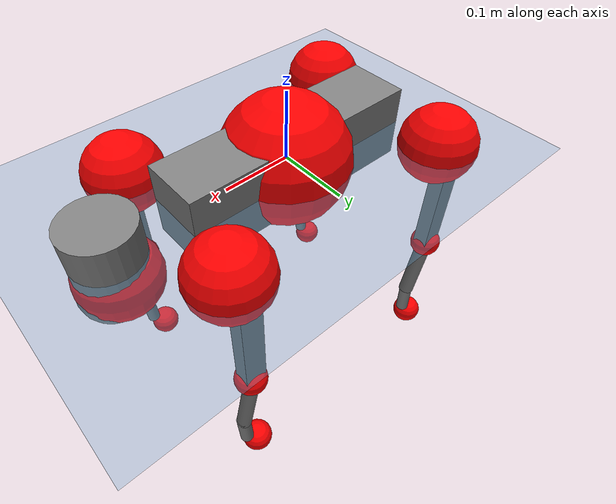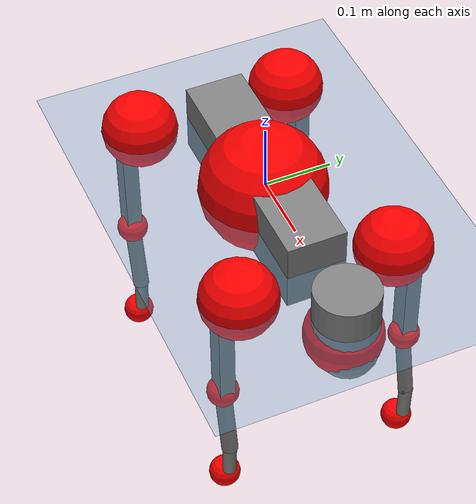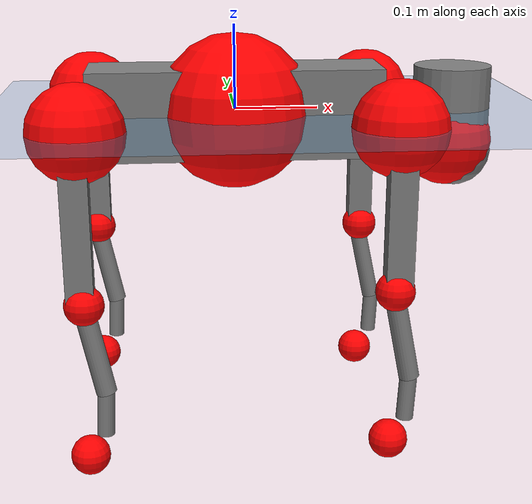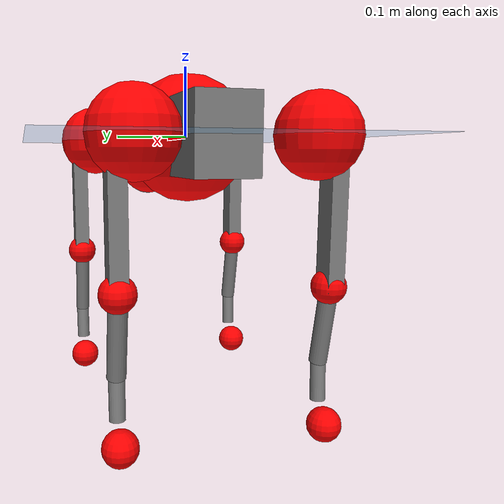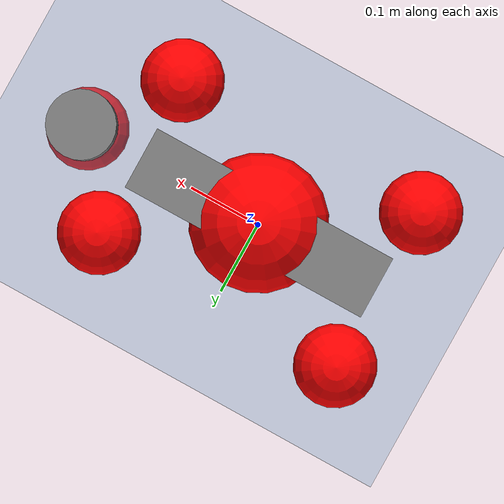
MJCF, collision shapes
<mujoco model="go2">
  <compiler angle="radian" assetdir="assets" balanceinertia="true" inertiafromgeom="false"/>

  <option timestep="0.005" density="1.2" viscosity="2e-05"/>

  <size nkey="1"/>

  <visual>
    <quality shadowsize="8192"/>
    <map shadowclip="0.5"/>
  </visual>

  <default>
    <default class="/">
      <geom contype="0" conaffinity="0" group="1" solref="-1000 -80"/>
      <site size="0.01 0.005 0.005" group="5"/>
      <general forcelimited="true" biastype="affine" gainprm="20" biasprm="0 -20 -0.5"/>
      <default class="go2">
        <joint armature="0.01" damping="0.01" frictionloss="0.2"/>
        <geom condim="1" margin="0.001"/>
        <default class="visual">
          <geom type="mesh" group="2"/>
        </default>
        <default class="collision">
          <geom group="3"/>
          <default class="foot">
            <geom size="0.022 0 0" condim="6" priority="1" friction="0.8 0.02 0.01" solimp="0.015 1 0.022"/>
          </default>
        </default>
        <default class="reward_collision_sphere">
          <geom group="5" rgba="1 0 0 1"/>
        </default>
      </default>
    </default>
  </default>

  <asset>
    <texture type="skybox" colorspace="auto" name="//unnamed_texture_0" builtin="gradient" rgb1="0.95 0.95 0.95" rgb2="0.95 0.95 0.95" width="100" height="600"/>
    <texture type="2d" colorspace="auto" name="texplane" builtin="checker" rgb1="0.345 0.575 0.748" rgb2="0.345 0.575 0.748" markrgb="1 1 1" width="512" height="512"/>
    <material name="MatPlane" class="/" texture="texplane" texuniform="true" texrepeat="2 2" specular="0.9"/>
    <material name="metal" class="/" rgba="0.9 0.95 0.95 1"/>
    <material name="black" class="/" rgba="0 0 0 1"/>
    <material name="white" class="/"/>
    <material name="gray" class="/" rgba="0.671705 0.692426 0.77427 1"/>
    <mesh name="base_0" class="/" file="base_0.obj"/>
    <mesh name="base_1" class="/" file="base_1.obj"/>
    <mesh name="base_2" class="/" file="base_2.obj"/>
    <mesh name="base_3" class="/" file="base_3.obj"/>
    <mesh name="base_4" class="/" file="base_4.obj"/>
    <mesh name="hip_0" class="/" file="hip_0.obj"/>
    <mesh name="hip_1" class="/" file="hip_1.obj"/>
    <mesh name="thigh_0" class="/" file="thigh_0.obj"/>
    <mesh name="thigh_1" class="/" file="thigh_1.obj"/>
    <mesh name="thigh_mirror_0" class="/" file="thigh_mirror_0.obj"/>
    <mesh name="thigh_mirror_1" class="/" file="thigh_mirror_1.obj"/>
    <mesh name="calf_0" class="/" file="calf_0.obj"/>
    <mesh name="calf_1" class="/" file="calf_1.obj"/>
    <mesh name="calf_mirror_0" class="/" file="calf_mirror_0.obj"/>
    <mesh name="calf_mirror_1" class="/" file="calf_mirror_1.obj"/>
    <mesh name="foot" class="/" file="foot.obj"/>
  </asset>

  <worldbody>
    <geom name="floor" class="/" size="100 100 0.125" type="plane" group="0" material="MatPlane"/>
    <light name="toplight_shadow" class="/" pos="0 0 5" dir="0.0990148 0.0990148 -0.990148" type="directional" ambient="0.04 0.04 0.04" diffuse="0.55 0.55 0.55" specular="0.12 0.12 0.12"/>
    <light name="toplight_fill" class="/" pos="0 0 5" dir="0.0990148 0.0990148 -0.990148" type="directional" castshadow="false" ambient="0.04 0.04 0.04" diffuse="0.3 0.3 0.3" specular="0.08 0.08 0.08"/>
    <body name="trunk" childclass="go2" pos="7.37101e-05 -0.00280822 -0.00149264" quat="0.999999 0.000734366 -0.000471202 0.00109622">
      <inertial pos="0.0165924 -0.000876833 -0.00213204" quat="-0.00630412 0.722208 -0.000773575 0.691647" mass="5.61154" diaginertia="0.0707423 0.0830136 0.0135181"/>
      <joint name="//unnamed_joint_0" type="free" armature="0" damping="0" frictionloss="0"/>
      <geom name="//unnamed_geom_1" class="visual" material="black" mesh="base_0"/>
      <geom name="//unnamed_geom_2" class="visual" material="black" mesh="base_1"/>
      <geom name="//unnamed_geom_3" class="visual" material="black" mesh="base_2"/>
      <geom name="//unnamed_geom_4" class="visual" material="white" mesh="base_3"/>
      <geom name="//unnamed_geom_5" class="visual" material="gray" mesh="base_4"/>
      <geom name="trunk_1" class="collision" size="0.174407 0.0433467 0.0528506" type="box"/>
      <geom name="trunk_2" class="collision" size="0.0463602 0.0417241" pos="0.263681 0 0.00885664" type="cylinder"/>
      <geom name="trunk_3" class="collision" size="0.0435785" pos="0.271083 0 -0.0531398"/>
      <geom name="//unnamed_geom_9" class="reward_collision_sphere" size="0.0927203"/>
      <geom name="//unnamed_geom_10" class="reward_collision_sphere" size="0.0556322" pos="0.259055 0 -0.0398549"/>
      <site name="imu" pos="-0.0190074 -0.00499206 0.0325156" size="0.00927203"/>
      <camera name="track" pos="0 -1.9415 0" quat="0.707107 0.707107 0 0" mode="trackcom"/>
      <camera name="ego_camera" pos="0.288662 0 0.0398549" quat="-0.5 -0.5 0.5 0.5"/>
      <body name="FL_hip" pos="0.17729 0.0448076 -0.000450381" quat="1 1.94153e-05 -0.000109933 0.000152937">
        <inertial pos="-0.00519896 -0.0002727 -0.00142831" quat="0.497233 0.499406 0.504954 0.498372" mass="0.539367" diaginertia="0.000609416 0.000499526 0.000265591"/>
        <joint name="FL_hip_joint" pos="0 0 0" axis="0.999889 -0.0125273 0.00800613" stiffness="0.00656192" range="-1.10504 1.0514" armature="0.00965501" damping="0.00546973" frictionloss="0.182619"/>
        <geom name="//unnamed_geom_11" class="visual" material="metal" mesh="hip_0"/>
        <geom name="//unnamed_geom_12" class="visual" material="gray" mesh="hip_1"/>
        <geom name="//unnamed_geom_13" class="collision" size="0.0426513 0.0185441" pos="0 0.0776598 0" quat="0.707107 0.707107 0 0" type="cylinder"/>
        <geom name="//unnamed_geom_14" class="reward_collision_sphere" size="0.0556322" pos="0 0.0679524 0"/>
        <body name="FL_thigh" pos="0.00192443 0.095269 -0.000173652" quat="1 -0.00026744 -0.000261835 -2.15292e-05">
          <inertial pos="-0.00279632 -0.0210843 -0.0280431" quat="0.828356 0.0863872 -0.00937902 0.553422" mass="0.953317" diaginertia="0.00395237 0.00511905 0.000480815"/>
          <joint name="FL_thigh_joint" pos="0 0 0" axis="0.000713279 0.999885 0.0151645" stiffness="0.0160044" range="-1.6262 3.45951" armature="0.00961704" damping="0.00471288" frictionloss="0.159451"/>
          <geom name="//unnamed_geom_15" class="visual" material="metal" mesh="thigh_0"/>
          <geom name="//unnamed_geom_16" class="visual" material="gray" mesh="thigh_1"/>
          <geom name="//unnamed_geom_17" class="collision" size="0.0987471 0.0113582 0.0157625" pos="0 0 -0.0943232" quat="0.707107 0 0.707107 0" type="box"/>
          <body name="FL_calf" pos="0.000896167 -0.000798579 -0.188726" quat="1 -0.000384491 9.84896e-05 -0.000397722">
            <inertial pos="0.00393942 -0.00337372 -0.127263" quat="0.714391 0.00213502 -0.0123999 0.699634" mass="0.189704" diaginertia="0.000971147 0.00123996 2.82568e-05"/>
            <joint name="FL_calf_joint" pos="0 0 0" axis="0.00676443 0.999977 -0.000923482" stiffness="0.0132985" range="-2.71175 -0.789896" armature="0.00786486" damping="0" frictionloss="0.201018"/>
            <geom name="//unnamed_geom_18" class="visual" material="gray" mesh="calf_0"/>
            <geom name="//unnamed_geom_19" class="visual" material="black" mesh="calf_1"/>
            <geom name="FL_calf0" class="collision" size="0.0111264 0.0556322" pos="0.00740158 0 -0.0531398" quat="0.994493 0 -0.104807 0" type="cylinder"/>
            <geom name="//unnamed_geom_21" class="collision" size="0.0101992 0.0301341" pos="0.0185039 0 -0.131078" quat="0.999688 0 0.0249974 0" type="cylinder"/>
            <geom name="//unnamed_geom_22" class="visual" pos="0 0 -0.188646" quat="1 0 0 0" material="black" mesh="foot"/>
            <geom name="FL_foot" class="foot" size="0.0155178" pos="-0.00185039 0 -0.188646"/>
            <geom name="//unnamed_geom_24" class="reward_collision_sphere" size="0.0231801"/>
            <geom name="//unnamed_geom_25" class="reward_collision_sphere" size="0.0231801" pos="-0.00185039 0 -0.188646"/>
            <site name="FL_foot" class="foot" pos="-0.00185039 0 -0.188646" size="0.00927203"/>
          </body>
        </body>
      </body>
      <body name="FR_hip" pos="0.178166 -0.0474231 -0.00125524" quat="1 0.000234182 -0.000126173 -3.4454e-05">
        <inertial pos="-0.00392276 0.000286391 -0.00205765" quat="0.497087 0.512703 0.496958 0.493024" mass="0.524875" diaginertia="0.000577042 0.000514358 0.000266764"/>
        <joint name="FR_hip_joint" pos="0 0 0" axis="0.999902 -0.00530351 0.0129796" stiffness="0.0023113" range="-1.06367 1.09265" armature="0.00812897" damping="0.00909101" frictionloss="0.1969"/>
        <geom name="//unnamed_geom_26" class="visual" pos="0 7.41219e-10 3.17924e-08" quat="4.63268e-05 1 0 0" material="metal" mesh="hip_0"/>
        <geom name="//unnamed_geom_27" class="visual" pos="0 1.2016e-09 -7.86348e-08" quat="4.63268e-05 1 0 0" material="gray" mesh="hip_1"/>
        <geom name="//unnamed_geom_28" class="collision" size="0.0426513 0.0185441" pos="0 -0.0776598 0" quat="0.707107 0.707107 0 0" type="cylinder"/>
        <geom name="//unnamed_geom_29" class="reward_collision_sphere" size="0.0556322" pos="0 -0.0679524 0"/>
        <body name="FR_thigh" pos="-0.000913624 -0.0925187 0.00194118" quat="1 4.08735e-05 0.00034039 7.09874e-05">
          <inertial pos="-0.000539928 0.0189853 -0.0275164" quat="0.554972 -0.0205332 0.0760374 0.828132" mass="0.931705" diaginertia="0.00388563 0.00503234 0.00047856"/>
          <joint name="FR_thigh_joint" pos="0 0 0" axis="0.00269689 -0.999996 0.000220282" stiffness="0.000444111" range="-3.47676 1.60108" armature="0.00851059" damping="0.0204585" frictionloss="0.159274"/>
          <geom name="//unnamed_geom_30" class="visual" material="metal" mesh="thigh_mirror_0"/>
          <geom name="//unnamed_geom_31" class="visual" material="gray" mesh="thigh_mirror_1"/>
          <geom name="//unnamed_geom_32" class="collision" size="0.0987471 0.0113582 0.0157625" pos="0 0 -0.0943232" quat="0.707107 0 0.707107 0" type="box"/>
          <body name="FR_calf" pos="-0.00290756 -4.54224e-05 -0.185926" quat="1 0.000206542 6.05267e-05 5.78763e-05">
            <inertial pos="0.00301902 0.00346104 -0.125002" quat="0.702376 0.00493791 0.00809211 0.711743" mass="0.19377" diaginertia="0.000992175 0.00131675 2.81846e-05"/>
            <joint name="FR_calf_joint" pos="0 0 0" axis="-0.000368425 -0.999997 0.00231634" range="0.866117 2.74232" armature="0.00944911" damping="0" frictionloss="0.166977"/>
            <geom name="//unnamed_geom_33" class="visual" material="gray" mesh="calf_mirror_0"/>
            <geom name="//unnamed_geom_34" class="visual" material="black" mesh="calf_mirror_1"/>
            <geom name="FR_calf0" class="collision" size="0.0120536 0.0556322" pos="0.00925197 0 -0.0531398" quat="0.995004 0 -0.0998334 0" type="cylinder"/>
            <geom name="//unnamed_geom_36" class="collision" size="0.0101992 0.0301341" pos="0.0185039 0 -0.131078" quat="0.999688 0 0.0249974 0" type="cylinder"/>
            <geom name="//unnamed_geom_37" class="visual" pos="0 0 -0.188646" quat="1 0 0 0" material="black" mesh="foot"/>
            <geom name="FR_foot" class="foot" size="0.0203599" pos="-0.00185039 0 -0.188646"/>
            <geom name="//unnamed_geom_39" class="reward_collision_sphere" size="0.0231801"/>
            <geom name="//unnamed_geom_40" class="reward_collision_sphere" size="0.0231801" pos="-0.00185039 0 -0.188646"/>
            <site name="FR_foot" class="foot" pos="-0.00185039 0 -0.188646" size="0.00927203"/>
          </body>
        </body>
      </body>
      <body name="RL_hip" pos="-0.178275 0.0476811 0.000501851" quat="1 -0.000196442 0.000245385 0.000217197">
        <inertial pos="0.00525231 0.00207125 0.00291287" quat="0.50288 0.49845 0.497759 0.500895" mass="0.522597" diaginertia="0.000582089 0.000483475 0.000263473"/>
        <joint name="RL_hip_joint" pos="0 0 0" axis="-0.999884 -0.00176998 0.0151199" stiffness="0.00701146" range="-1.00672 1.00302" armature="0.00904381" damping="0.0126203" frictionloss="0.209118"/>
        <geom name="//unnamed_geom_41" class="visual" pos="-3.44399e-10 0 -6.751e-08" quat="4.63268e-05 0 1 0" material="metal" mesh="hip_0"/>
        <geom name="//unnamed_geom_42" class="visual" pos="-5.58311e-10 0 -5.98718e-08" quat="4.63268e-05 0 1 0" material="gray" mesh="hip_1"/>
        <geom name="//unnamed_geom_43" class="collision" size="0.0426513 0.0185441" pos="0 0.0776598 0" quat="0.707107 0.707107 0 0" type="cylinder"/>
        <geom name="//unnamed_geom_44" class="reward_collision_sphere" size="0.0556322" pos="0 0.0679524 0"/>
        <body name="RL_thigh" pos="-0.000458598 0.0894846 0.00280162" quat="1 -0.000379679 -0.00026192 0.00064149">
          <inertial pos="-0.00288143 -0.0214578 -0.0269245" quat="0.829439 0.078169 -0.031124 0.552224" mass="0.910465" diaginertia="0.00390832 0.00523196 0.000492046"/>
          <joint name="RL_thigh_joint" pos="0 0 0" axis="0.00129707 0.999999 -0.000733467" range="-0.508715 4.55465" armature="0.0105558" damping="0.0219326" frictionloss="0.159639"/>
          <geom name="//unnamed_geom_45" class="visual" material="metal" mesh="thigh_0"/>
          <geom name="//unnamed_geom_46" class="visual" material="gray" mesh="thigh_1"/>
          <geom name="//unnamed_geom_47" class="collision" size="0.0987471 0.0113582 0.0157625" pos="0 0 -0.0943232" quat="0.707107 0 0.707107 0" type="box"/>
          <body name="RL_calf" pos="-0.00228269 -6.58456e-05 -0.186782" quat="0.999999 0.00108191 -0.000749013 0.00062576">
            <inertial pos="0.00522976 0.0016817 -0.124289" quat="0.713907 0.000190532 -0.00635721 0.700211" mass="0.188318" diaginertia="0.000972737 0.00121568 2.79576e-05"/>
            <joint name="RL_calf_joint" pos="0 0 0" axis="-0.00197887 0.999994 0.0027308" stiffness="0.00577695" range="-2.70501 -0.829825" armature="0.00956778" damping="0.014734" frictionloss="0.159295"/>
            <geom name="//unnamed_geom_48" class="visual" material="gray" mesh="calf_0"/>
            <geom name="//unnamed_geom_49" class="visual" material="black" mesh="calf_1"/>
            <geom name="RL_calf0" class="collision" size="0.0120536 0.0556322" pos="0.00925197 0 -0.0531398" quat="0.995004 0 -0.0998334 0" type="cylinder"/>
            <geom name="//unnamed_geom_51" class="collision" size="0.0101992 0.0301341" pos="0.0185039 0 -0.131078" quat="0.999688 0 0.0249974 0" type="cylinder"/>
            <geom name="//unnamed_geom_52" class="visual" pos="0 0 -0.188646" quat="1 0 0 0" material="black" mesh="foot"/>
            <geom name="RL_foot" class="foot" size="0.0173873" pos="-0.00185039 0 -0.188646"/>
            <geom name="//unnamed_geom_54" class="reward_collision_sphere" size="0.0231801"/>
            <geom name="//unnamed_geom_55" class="reward_collision_sphere" size="0.0231801" pos="-0.00185039 0 -0.188646"/>
            <site name="RL_foot" class="foot" pos="-0.00185039 0 -0.188646" size="0.00927203"/>
          </body>
        </body>
      </body>
      <body name="RR_hip" pos="-0.179945 -0.0465943 -0.000260472" quat="1 8.51886e-05 3.68373e-05 -1.52433e-05">
        <inertial pos="0.00393018 -0.00317165 0.000900752" quat="0.498823 0.497601 0.497596 0.505932" mass="0.524032" diaginertia="0.000579454 0.000505853 0.000253484"/>
        <joint name="RR_hip_joint" pos="0 0 0" axis="-0.999994 0.00124847 -0.00334321" stiffness="0.00770346" range="-1.04918 1.10335" armature="0.0100218" damping="0.00552333" frictionloss="0.211683"/>
        <geom name="//unnamed_geom_56" class="visual" pos="3.45975e-10 7.41219e-10 -9.93024e-08" quat="2.14617e-09 4.63268e-05 4.63268e-05 -1" material="metal" mesh="hip_0"/>
        <geom name="//unnamed_geom_57" class="visual" pos="5.54411e-10 1.2016e-09 1.8763e-08" quat="2.14617e-09 4.63268e-05 4.63268e-05 -1" material="gray" mesh="hip_1"/>
        <geom name="//unnamed_geom_58" class="collision" size="0.0426513 0.0185441" pos="0 -0.0776598 0" quat="0.707107 0.707107 0 0" type="cylinder"/>
        <geom name="//unnamed_geom_59" class="reward_collision_sphere" size="0.0556322" pos="0 -0.0679524 0"/>
        <body name="RR_thigh" pos="-0.00262143 -0.0907499 -0.00369144" quat="1 0.000831179 0.000393638 -0.00030864">
          <inertial pos="-0.00271769 0.0191504 -0.0283554" quat="0.550569 -0.0202931 0.0832934 0.830376" mass="0.941402" diaginertia="0.00410747 0.0049906 0.000465465"/>
          <joint name="RR_thigh_joint" pos="0 0 0" axis="-0.00351596 -0.999986 -0.00396092" stiffness="0.0087709" range="-4.55723 0.534744" armature="0.00883059" damping="0.0217095" frictionloss="0.195029"/>
          <geom name="//unnamed_geom_60" class="visual" material="metal" mesh="thigh_mirror_0"/>
          <geom name="//unnamed_geom_61" class="visual" material="gray" mesh="thigh_mirror_1"/>
          <geom name="//unnamed_geom_62" class="collision" size="0.0987471 0.0113582 0.0157625" pos="0 0 -0.0943232" quat="0.707107 0 0.707107 0" type="box"/>
          <body name="RR_calf" pos="0.00349105 -0.000507204 -0.187872" quat="1 -0.000227893 -0.000138938 -9.60502e-05">
            <inertial pos="0.00287355 -0.000171849 -0.125775" quat="0.703235 -0.004312 0.00207888 0.710941" mass="0.199087" diaginertia="0.00102572 0.00130269 2.92966e-05"/>
            <joint name="RR_calf_joint" pos="0 0 0" axis="-0.00890598 -0.99996 0.000659575" range="0.873205 2.77695" armature="0.00963369" damping="0.0137043" frictionloss="0.211128"/>
            <geom name="//unnamed_geom_63" class="visual" material="gray" mesh="calf_mirror_0"/>
            <geom name="//unnamed_geom_64" class="visual" material="black" mesh="calf_mirror_1"/>
            <geom name="RR_calf0" class="collision" size="0.0120536 0.0556322" pos="0.00925197 0 -0.0531398" quat="0.995004 0 -0.0998334 0" type="cylinder"/>
            <geom name="//unnamed_geom_66" class="collision" size="0.0101992 0.0301341" pos="0.0185039 0 -0.131078" quat="0.999688 0 0.0249974 0" type="cylinder"/>
            <geom name="//unnamed_geom_67" class="visual" pos="0 0 -0.188646" quat="1 0 0 0" material="black" mesh="foot"/>
            <geom name="RR_foot" class="foot" size="0.0207974" pos="-0.00185039 0 -0.188646"/>
            <geom name="//unnamed_geom_69" class="reward_collision_sphere" size="0.0231801"/>
            <geom name="//unnamed_geom_70" class="reward_collision_sphere" size="0.0231801" pos="-0.00185039 0 -0.188646"/>
            <site name="RR_foot" class="foot" pos="-0.00185039 0 -0.188646" size="0.00927203"/>
          </body>
        </body>
      </body>
    </body>
  </worldbody>

  <contact>
    <pair class="/" geom1="floor" geom2="FL_foot" name="//unnamed_contact_0"/>
    <pair class="/" geom1="floor" geom2="FR_foot" name="//unnamed_contact_1"/>
    <pair class="/" geom1="floor" geom2="RL_foot" name="//unnamed_contact_2"/>
    <pair class="/" geom1="floor" geom2="RR_foot" name="//unnamed_contact_3"/>
  </contact>

  <actuator>
    <general name="FL_hip" class="/" joint="FL_hip_joint" forcerange="-24.0448 24.0448" gainprm="18.6329" biasprm="0 -18.6329 -0.453831"/>
    <general name="FL_thigh" class="/" joint="FL_thigh_joint" forcerange="-21.4616 21.4616" gainprm="18.6329" biasprm="0 -18.6329 -0.453831"/>
    <general name="FL_calf" class="/" joint="FL_calf_joint" forcerange="-40.4364 40.4364" gainprm="18.6329" biasprm="0 -18.6329 -0.453831"/>
    <general name="FR_hip" class="/" joint="FR_hip_joint" forcerange="-19.7246 19.7246" gainprm="18.6329" biasprm="0 -18.6329 -0.453831"/>
    <general name="FR_thigh" class="/" joint="FR_thigh_joint" forcerange="-22.5701 22.5701" gainprm="18.6329" biasprm="0 -18.6329 -0.453831"/>
    <general name="FR_calf" class="/" joint="FR_calf_joint" forcerange="-37.6406 37.6406" gainprm="18.6329" biasprm="0 -18.6329 -0.453831"/>
    <general name="RL_hip" class="/" joint="RL_hip_joint" forcerange="-20.5942 20.5942" gainprm="18.6329" biasprm="0 -18.6329 -0.453831"/>
    <general name="RL_thigh" class="/" joint="RL_thigh_joint" forcerange="-22.3381 22.3381" gainprm="18.6329" biasprm="0 -18.6329 -0.453831"/>
    <general name="RL_calf" class="/" joint="RL_calf_joint" forcerange="-44.5563 44.5563" gainprm="18.6329" biasprm="0 -18.6329 -0.453831"/>
    <general name="RR_hip" class="/" joint="RR_hip_joint" forcerange="-19.8344 19.8344" gainprm="18.6329" biasprm="0 -18.6329 -0.453831"/>
    <general name="RR_thigh" class="/" joint="RR_thigh_joint" forcerange="-23.5989 23.5989" gainprm="18.6329" biasprm="0 -18.6329 -0.453831"/>
    <general name="RR_calf" class="/" joint="RR_calf_joint" forcerange="-44.7691 44.7691" gainprm="18.6329" biasprm="0 -18.6329 -0.453831"/>
  </actuator>

  <sensor>
    <gyro site="imu" name="imu_angular_velocity"/>
    <velocimeter site="imu" name="imu_linear_velocity"/>
    <framelinvel objtype="site" objname="FL_foot" name="FL_foot_global_linear_velocity"/>
    <framelinvel objtype="site" objname="FR_foot" name="FR_foot_global_linear_velocity"/>
    <framelinvel objtype="site" objname="RL_foot" name="RL_foot_global_linear_velocity"/>
    <framelinvel objtype="site" objname="RR_foot" name="RR_foot_global_linear_velocity"/>
  </sensor>

  <keyframe>
    <key name="home" qpos="0 0 0.325 1 0 0 0 0.1 0.8 -1.5 -0.1 -0.8 1.5 -0.1 0.8 -1.5 0.1 -0.8 1.5"/>
  </keyframe>
</mujoco>
